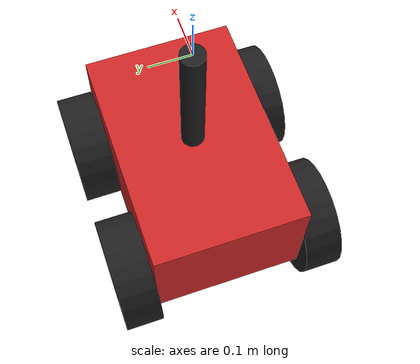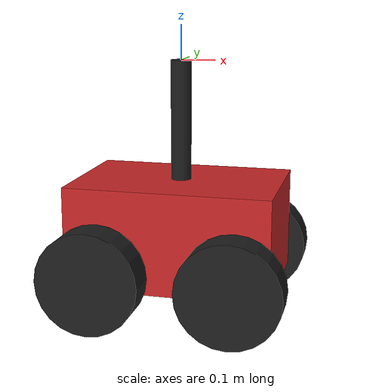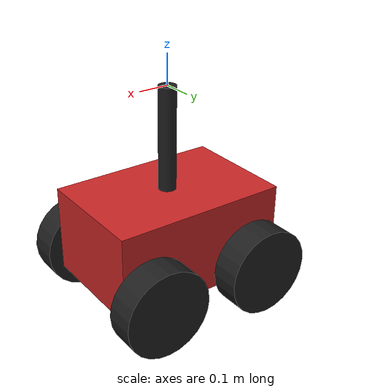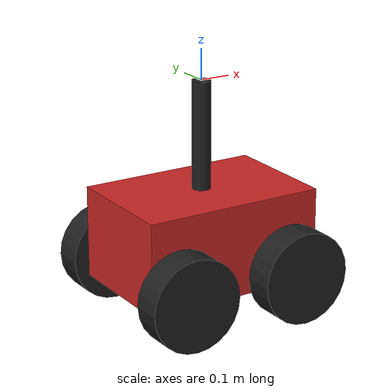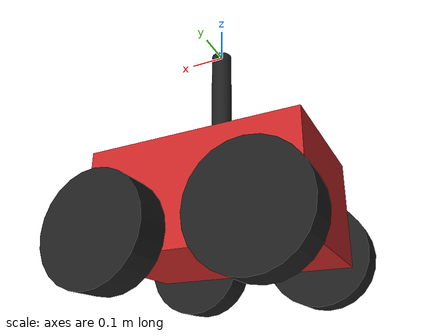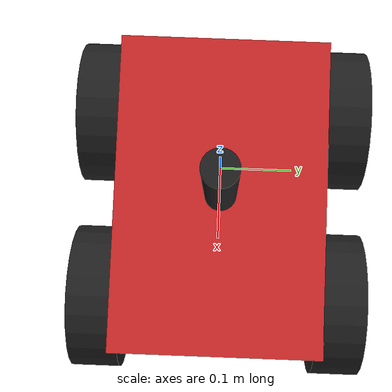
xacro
<robot xmlns:xacro="http://www.ros.org/wiki/xacro" name="example">

  <xacro:macro name="gazebo_material" params="ref color">
    <gazebo reference="${ref}">
      <material>Gazebo/${color}</material>
    </gazebo>
  </xacro:macro>

  <link name="base_origin">
  </link>

  <link name="base_link">
    <visual>
      <origin xyz="0 0 0" rpy="0 0 0"/>
      <geometry>
        <box size="0.6 0.4 0.3"/>
      </geometry>
    </visual>

    <inertial>
      <mass value="1e-5" />
      <origin xyz="0 0 0" rpy="0 0 0"/>
      <inertia ixx="1e-6" ixy="0" ixz="0" iyy="1e-6" iyz="0" izz="1e-6" />
    </inertial>
  </link>

  <joint name="base_link_joint" type="fixed">
    <origin xyz="0.0 0 -0.5" rpy="0 0 0"/>
    <parent link="base_origin"/>
    <child link="base_link"/>
  </joint>

  <link name="lidar_holder">
    <visual>
      <origin xyz="0 0 0" rpy="0 0 0"/>
      <geometry>
        <cylinder radius="0.03" length="0.35"/>
      </geometry>
    </visual>

    <inertial>
      <mass value="1e-5" />
      <origin xyz="0 0 0" rpy="0 0 0"/>
      <inertia ixx="1e-6" ixy="0" ixz="0" iyy="1e-6" iyz="0" izz="1e-6" />
    </inertial>
  </link>

  <joint name="lidar_holder_joint" type="fixed">
    <origin xyz="0.0 0 -0.175" rpy="0 0 0"/>
    <parent link="base_origin"/>
    <child link="lidar_holder"/>
  </joint>

  <link name="left_front_wheel">
    <visual>
      <origin xyz="0 0 0" rpy="0 0 0"/>
      <geometry>
        <cylinder radius="0.15" length="0.1"/>
      </geometry>
    </visual>

    <inertial>
      <mass value="1e-5" />
      <origin xyz="0 0 0" rpy="0 0 0"/>
      <inertia ixx="1e-6" ixy="0" ixz="0" iyy="1e-6" iyz="0" izz="1e-6" />
    </inertial>
  </link>

  <joint name="left_front_joint" type="fixed">
    <origin xyz="0.2 -0.25 -0.1" rpy="1.57 0 0"/>
    <parent link="base_link"/>
    <child link="left_front_wheel"/>
  </joint>

  <link name="right_front_wheel">
    <visual>
      <origin xyz="0 0 0" rpy="0 0 0"/>
      <geometry>
        <cylinder radius="0.15" length="0.1"/>
      </geometry>
    </visual>

    <inertial>
      <mass value="1e-5" />
      <origin xyz="0 0 0" rpy="0 0 0"/>
      <inertia ixx="1e-6" ixy="0" ixz="0" iyy="1e-6" iyz="0" izz="1e-6" />
    </inertial>
  </link>

  <joint name="rigth_front_joint" type="fixed">
    <origin xyz="0.2 0.25 -0.1" rpy="-1.57 0 0"/>
    <parent link="base_link"/>
    <child link="right_front_wheel"/>
  </joint>

  <link name="left_rear_wheel">
    <visual>
      <origin xyz="0 0 0" rpy="0 0 0"/>
      <geometry>
        <cylinder radius="0.15" length="0.1"/>
      </geometry>
    </visual>

    <inertial>
      <mass value="1e-5" />
      <origin xyz="0 0 0" rpy="0 0 0"/>
      <inertia ixx="1e-6" ixy="0" ixz="0" iyy="1e-6" iyz="0" izz="1e-6" />
    </inertial>
  </link>

  <joint name="left_rear_joint" type="fixed">
    <origin xyz="-0.2 -0.25 -0.1" rpy="1.57 0 0"/>
    <parent link="base_link"/>
    <child link="left_rear_wheel"/>
  </joint>

  <link name="right_rear_wheel">
    <visual>
      <origin xyz="0 0 0" rpy="0 0 0"/>
      <geometry>
        <cylinder radius="0.15" length="0.1"/>
      </geometry>
    </visual>

    <inertial>
      <mass value="1e-5" />
      <origin xyz="0 0 0" rpy="0 0 0"/>
      <inertia ixx="1e-6" ixy="0" ixz="0" iyy="1e-6" iyz="0" izz="1e-6" />
    </inertial>
  </link>

  <joint name="right_rear_joint" type="fixed">
    <origin xyz="-0.2 0.25 -0.1" rpy="-1.57 0 0"/>
    <parent link="base_link"/>
    <child link="right_rear_wheel"/>
  </joint>

  <xacro:gazebo_material ref="base_link"         color="Red" />
  <xacro:gazebo_material ref="lidar_holder"      color="Black" />
  <xacro:gazebo_material ref="left_front_wheel"  color="Black" />
  <xacro:gazebo_material ref="left_rear_wheel"   color="Black" />
  <xacro:gazebo_material ref="right_front_wheel" color="Black" />
  <xacro:gazebo_material ref="right_rear_wheel"  color="Black" />

</robot>
